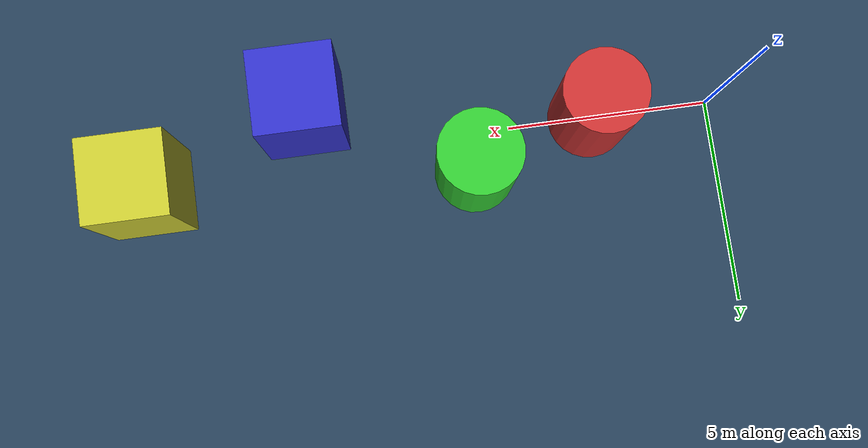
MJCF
<?xml version="1.0" encoding="utf-8"?>
<mujoco model="vision_environment">

    <!-- 통계 정보 -->
    <statistic center="0 0 0.1" extent="0.8"/>

    <!-- 시각화 설정 -->
    <visual>
        <headlight diffuse="0.6 0.6 0.6" ambient="0.3 0.3 0.3" specular="0 0 0"/>
        <rgba haze="0.15 0.25 0.35 1"/>
        <global azimuth="-130" elevation="-20"/>
    </visual>

    <!-- 에셋 정의 -->
    <asset>
        <texture type="skybox" builtin="gradient" rgb1="0.3 0.5 0.7" rgb2="0 0 0" width="512" height="3072"/>
        <texture type="2d" name="groundplane" builtin="checker" mark="edge" rgb1="0.2 0.3 0.4" rgb2="0.1 0.2 0.3"
            markrgb="0.8 0.8 0.8" width="300" height="300"/>
        <material name="groundplane" texture="groundplane" texuniform="true" texrepeat="5 5" reflectance="0.2"/>
    </asset>

    <!-- 월드 바디 정의 -->
    <worldbody>
        <!-- 조명 설정 -->
        <light pos="0 0 1.5" dir="0 0 -1" directional="true"/>
        <light name="robot_light" pos="0 0 2" dir="0 0 -1" diffuse="0.7 0.7 0.7" specular="0.2 0.2 0.2"/>

        <!-- 지면 설정 -->
        <geom name="floor" size="0 0 0.05" type="plane" material="groundplane"/>

        <!-- 원기둥 장애물 1 -->
        <geom pos="3 0 1.5" type="cylinder" size="1 1.5" rgba="0.8 0.2 0.2 1"/>

        <!-- 원기둥 장애물 2 -->
        <geom pos="6 1 1.5" type="cylinder" size="1 1.5" rgba="0.2 0.8 0.2 1"/>

        <!-- 사각형 장애물 1 -->
        <geom pos="10 -1 1.5" type="box" size="1 1 1.5" rgba="0.2 0.2 0.8 1"/>

        <!-- 사각형 장애물 2 -->
        <geom pos="14 0.5 1.5" type="box" size="1 1 1.5" rgba="0.8 0.8 0.2 1"/>

    </worldbody>
</mujoco>
